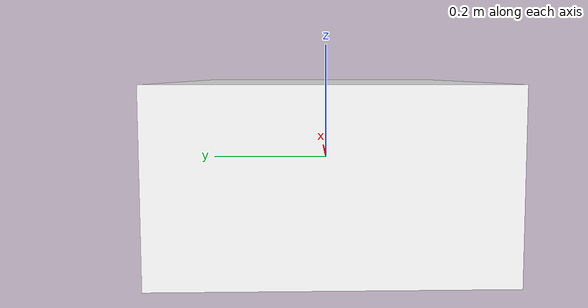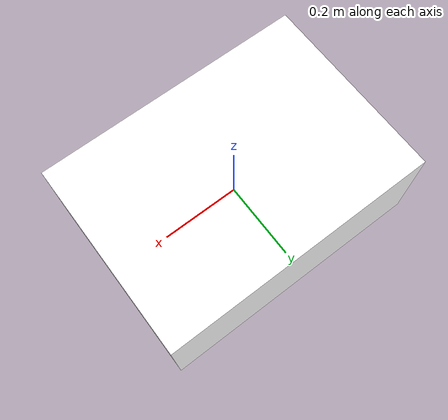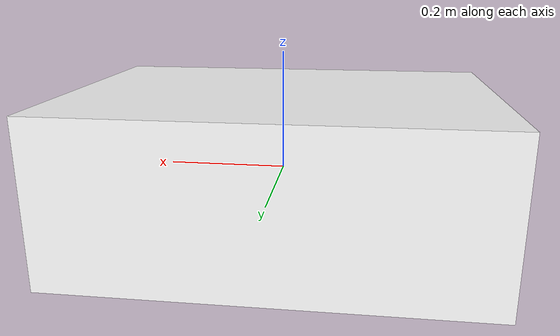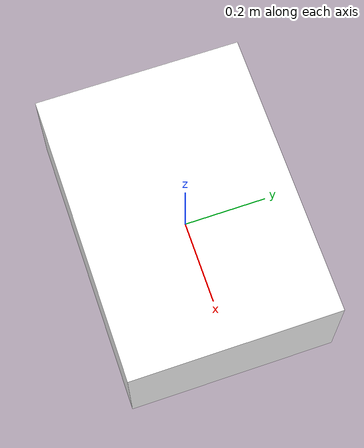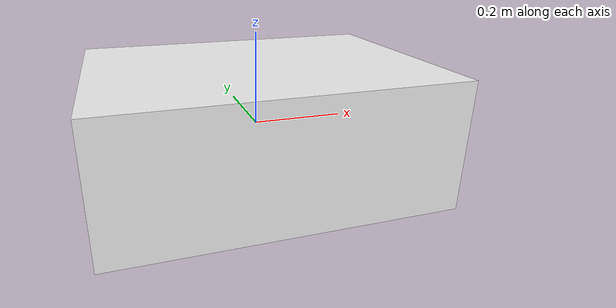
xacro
<?xml version="1.0"?>
<robot name="agv" xmlns:xacro="http://ros.org/wiki/xacro">
  <material name="Black">
    <color rgba="0.0 0.0 0.0 1.0"/>
  </material>

  <material name="White">
    <color rgba="1.0 1.0 1.0 1.0"/>
  </material>

  <!-- AGV Base -->
  <xacro:property name="agv_base_height" value="0.27" />
  <xacro:property name="agv_base_width" value="0.5" />
  <xacro:property name="agv_base_length" value="0.7" />
  <xacro:property name="agv_base_mass" value="70.0" />

  <!-- Macro for calculating inertia of cube -->
  <xacro:macro name="cuboid_inertia" params="m w d h">
    <inertia  ixx="${m*(w*w+h*h)/12}" ixy = "0" ixz = "0"
              iyy="${m*(d*d+h*h)/12}" iyz = "0"
              izz="${m*(d*d+w*w)/12}" />
  </xacro:macro>

  <link name="base_footprint"/>

  <joint name="base_footprint_agv_base_joint" type="fixed">
    <origin xyz="0 0 0" rpy="0 0 0" />
    <parent link="base_footprint"/>
    <child link="agv_base_link" />
    <dynamics damping="0.001" friction="1.0"/>
  </joint>

  <link name="agv_base_link">
   <visual>
      <origin xyz="0 0 0" rpy="0 0 0" />
      <geometry>
        <box size="${agv_base_length} ${agv_base_width} ${agv_base_height}" />
      </geometry>
      <material name="White" />
    </visual>
    <inertial>
     <mass value="10.0" />
     <origin xyz="0 0 0" rpy="0 0 0" />
     <cuboid_inertia m="10.0" d="1.0" w="1.0" h="1.0" />
   </inertial>
    <!-- base top -->
    <collision>
      <origin xyz="0 0 ${agv_base_height/4-0.014}" rpy="0 0 0" />
      <geometry>
        <box size="${agv_base_length} ${agv_base_width} ${agv_base_height/2-0.027}" />
      </geometry>
    </collision>
    <!-- base bottom -->
    <collision>
      <origin xyz="0 0 ${-agv_base_height/4-0.0075}" rpy="0 0 0" />
      <geometry>
        <box size="${agv_base_length} ${agv_base_width} ${agv_base_height/2-0.015}" />
      </geometry>
    </collision>
    <!-- four corners -->
    <collision>
      <origin xyz="0.325 0.225 0.0" rpy="0 0 0" />
      <geometry>
        <box size="0.05 0.05 ${agv_base_height}" />
      </geometry>
    </collision>
    <collision>
      <origin xyz="0.325 -0.225 0.0" rpy="0 0 0" />
      <geometry>
        <box size="0.05 0.05 ${agv_base_height}" />
      </geometry>
    </collision>
    <collision>
      <origin xyz="-0.325 0.225 0.0" rpy="0 0 0" />
      <geometry>
        <box size="0.05 0.05 ${agv_base_height}" />
      </geometry>
    </collision>
    <collision>
      <origin xyz="-0.325 -0.225 0.0" rpy="0 0 0" />
      <geometry>
        <box size="0.05 0.05 ${agv_base_height}" />
      </geometry>
    </collision>
  </link>

  <gazebo reference="agv_base_link">
    <collision>
      <surface>
        <friction>
          <torsional>
            <coefficient>1.0</coefficient>
          </torsional>
          <ode>
            <mu>0</mu>
            <mu2>0</mu2>
            <fdir1>0 0 0</fdir1>
            <slip1>0</slip1>
            <slip2>0</slip2>
          </ode>
        </friction>
      </surface>
    </collision>
  </gazebo>
</robot>
